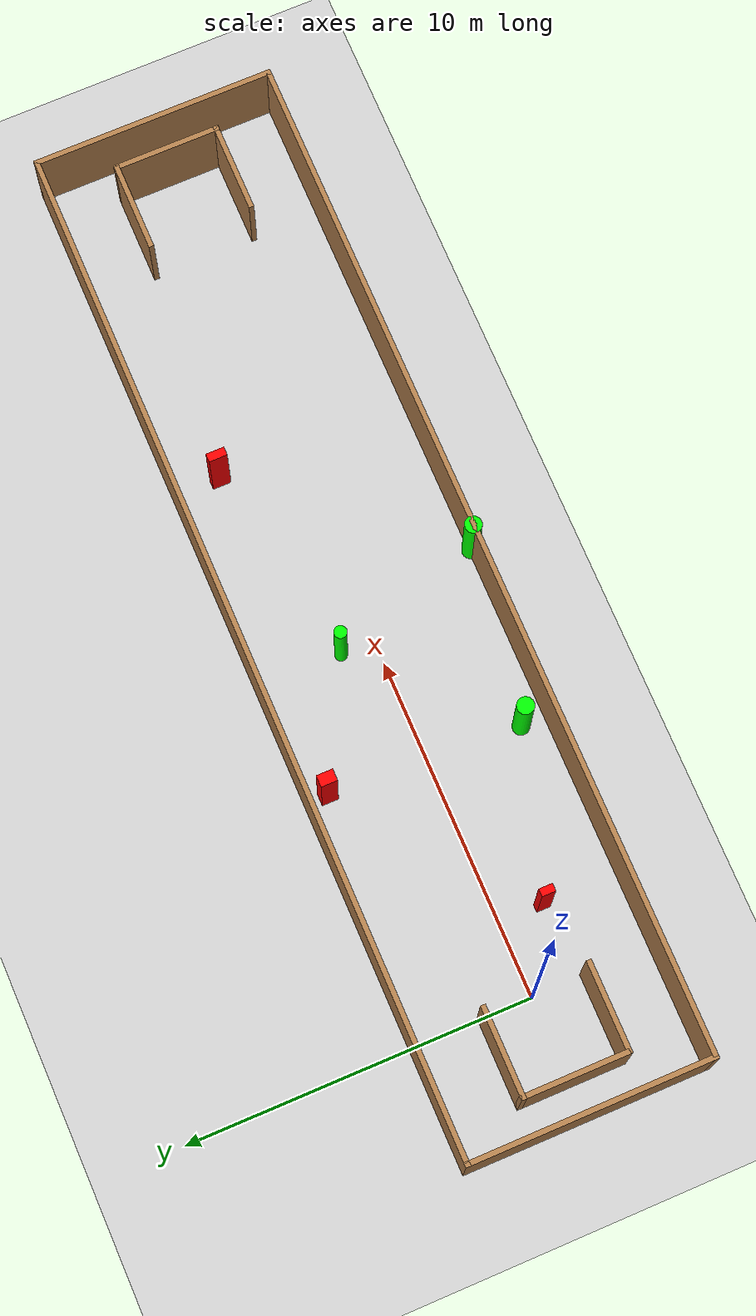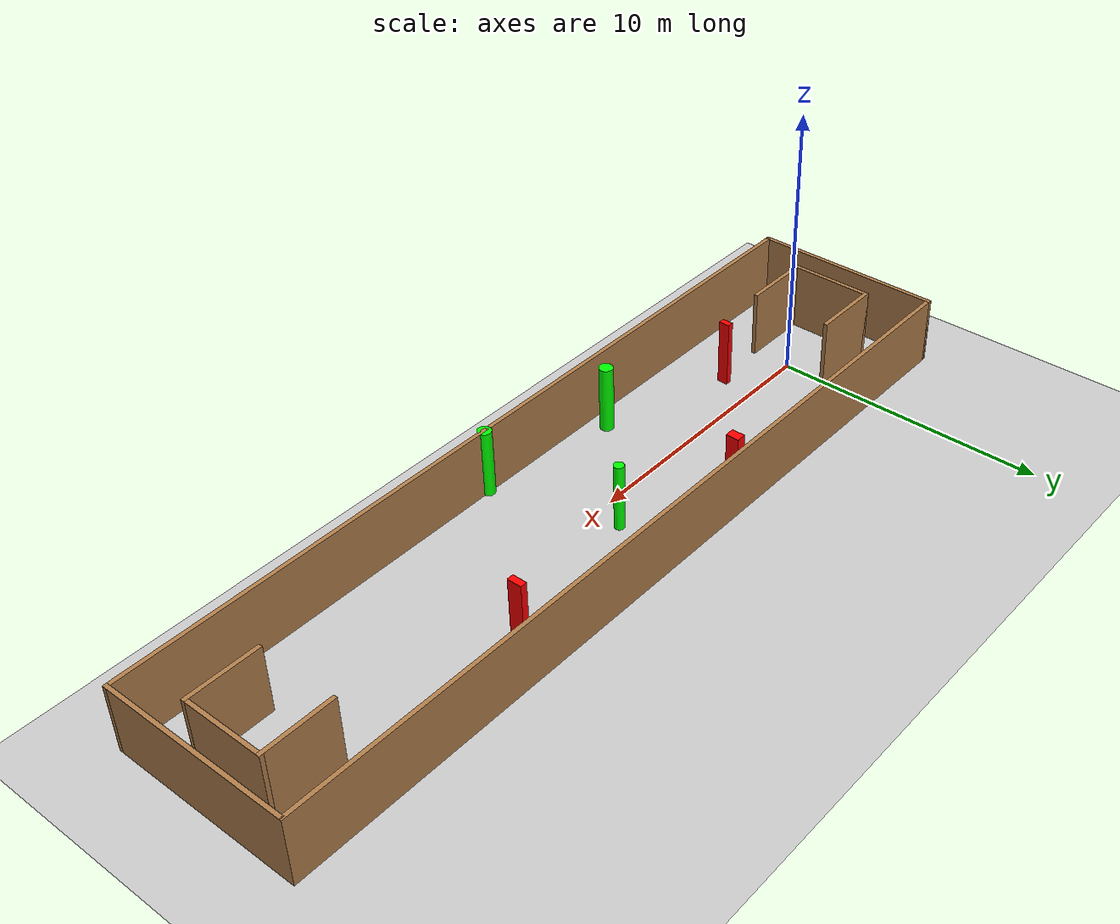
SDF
<sdf version="1.7">
 <world name="default">
  <light name="sun" type="directional">
   <pose>0 0 10 0 -0 0</pose>
   <diffuse>0.8 0.8 0.8 1</diffuse>
   <specular>0.2 0.2 0.2 1</specular>
   <attenuation>
    <range>1000</range>
    <constant>0.9</constant>
    <linear>0.01</linear>
    <quadratic>0.001</quadratic>
   </attenuation>
   <direction>-0.5 0.1 -0.9</direction>
   <spot><inner_angle>0</inner_angle><outer_angle>0</outer_angle><falloff>0</falloff></spot>
  </light>
  <model name="ground_plane">
   <static>1</static>
   <link name="link">
    <collision name="collision">
     <geometry><plane><normal>0 0 1</normal><size>100 100</size></plane></geometry>
     <surface>
      <contact><collide_bitmask>65535</collide_bitmask></contact>
      <friction><ode><mu>100</mu><mu2>50</mu2></ode></friction>
     </surface>
    </collision>
    <visual name="visual">
     <cast_shadows>0</cast_shadows>
     <geometry><plane><normal>0 0 1</normal><size>100 100</size></plane></geometry>
     <material>
      <script><uri>file://media/materials/scripts/gazebo.material</uri><name>Gazebo/Grey</name></script>
     </material>
    </visual>
   </link>
  </model>
  <gravity>0 0 -9.8</gravity>
  <magnetic_field>6e-06 2.3e-05 -4.2e-05</magnetic_field>
  <atmosphere type="adiabatic"/>
  <physics type="ode">
   <max_step_size>0.001</max_step_size>
   <real_time_factor>1</real_time_factor>
   <real_time_update_rate>1000</real_time_update_rate>
  </physics>
  <scene><ambient>0.4 0.4 0.4 1</ambient><background>0.7 0.7 0.7 1</background><shadows>1</shadows></scene>
  <spherical_coordinates>
   <surface_model>EARTH_WGS84</surface_model>
   <latitude_deg>0</latitude_deg>
   <longitude_deg>0</longitude_deg>
   <elevation>0</elevation>
   <heading_deg>0</heading_deg>
  </spherical_coordinates>
  <model name="my_base_walls">
   <link name="Wall_0">
    <collision name="Wall_0_Collision">
     <geometry><box><size>7.15 0.15 2.5</size></box></geometry>
     <pose>0 0 1.25 0 -0 0</pose>
    </collision>
    <visual name="Wall_0_Visual">
     <pose>0 0 1.25 0 -0 0</pose>
     <geometry><box><size>7.15 0.15 2.5</size></box></geometry>
     <material>
      <script><uri>file://media/materials/scripts/gazebo.material</uri><name>Gazebo/Wood</name></script>
      <ambient>1 1 1 1</ambient>
     </material>
     <meta><layer>0</layer></meta>
    </visual>
    <pose>-15 0 0 0 -0 1.5708</pose>
   </link>
   <link name="Wall_10">
    <collision name="Wall_10_Collision">
     <geometry><box><size>2.65 0.15 2.5</size></box></geometry>
     <pose>0 0 1.25 0 -0 0</pose>
    </collision>
    <visual name="Wall_10_Visual">
     <pose>0 0 1.25 0 -0 0</pose>
     <geometry><box><size>2.65 0.15 2.5</size></box></geometry>
     <material>
      <script><uri>file://media/materials/scripts/gazebo.material</uri><name>Gazebo/Wood</name></script>
      <ambient>1 1 1 1</ambient>
     </material>
     <meta><layer>0</layer></meta>
    </visual>
    <pose>-12.75 -1.5 0 0 -0 0</pose>
   </link>
   <link name="Wall_12">
    <collision name="Wall_12_Collision">
     <geometry><box><size>2.65 0.15 2.5</size></box></geometry>
     <pose>0 0 1.25 0 -0 0</pose>
    </collision>
    <visual name="Wall_12_Visual">
     <pose>0 0 1.25 0 -0 0</pose>
     <geometry><box><size>2.65 0.15 2.5</size></box></geometry>
     <material>
      <script><uri>file://media/materials/scripts/gazebo.material</uri><name>Gazebo/Wood</name></script>
      <ambient>1 1 1 1</ambient>
     </material>
     <meta><layer>0</layer></meta>
    </visual>
    <pose>-12.75 1.5 0 0 -0 0</pose>
   </link>
   <link name="Wall_14">
    <collision name="Wall_14_Collision">
     <geometry><box><size>3.15 0.15 2.5</size></box></geometry>
     <pose>0 0 1.25 0 -0 0</pose>
    </collision>
    <visual name="Wall_14_Visual">
     <pose>0 0 1.25 0 -0 0</pose>
     <geometry><box><size>3.15 0.15 2.5</size></box></geometry>
     <material>
      <script><uri>file://media/materials/scripts/gazebo.material</uri><name>Gazebo/Wood</name></script>
      <ambient>1 1 1 1</ambient>
     </material>
     <meta><layer>0</layer></meta>
    </visual>
    <pose>14 0 0 0 -0 -1.5708</pose>
   </link>
   <link name="Wall_15">
    <collision name="Wall_15_Collision">
     <geometry><box><size>2.65 0.15 2.5</size></box></geometry>
     <pose>0 0 1.25 0 -0 0</pose>
    </collision>
    <visual name="Wall_15_Visual">
     <pose>0 0 1.25 0 -0 0</pose>
     <geometry><box><size>2.65 0.15 2.5</size></box></geometry>
     <material>
      <script><uri>file://media/materials/scripts/gazebo.material</uri><name>Gazebo/Wood</name></script>
      <ambient>1 1 1 1</ambient>
     </material>
     <meta><layer>0</layer></meta>
    </visual>
    <pose>12.75 -1.5 0 0 -0 3.14159</pose>
   </link>
   <link name="Wall_17">
    <collision name="Wall_17_Collision">
     <geometry><box><size>2.65 0.15 2.5</size></box></geometry>
     <pose>0 0 1.25 0 -0 0</pose>
    </collision>
    <visual name="Wall_17_Visual">
     <pose>0 0 1.25 0 -0 0</pose>
     <geometry><box><size>2.65 0.15 2.5</size></box></geometry>
     <material>
      <script><uri>file://media/materials/scripts/gazebo.material</uri><name>Gazebo/Wood</name></script>
      <ambient>1 1 1 1</ambient>
     </material>
     <meta><layer>0</layer></meta>
    </visual>
    <pose>12.75 1.5 0 0 -0 3.14159</pose>
   </link>
   <link name="Wall_2">
    <collision name="Wall_2_Collision">
     <geometry><box><size>30.15 0.15 2.5</size></box></geometry>
     <pose>0 0 1.25 0 -0 0</pose>
    </collision>
    <visual name="Wall_2_Visual">
     <pose>0 0 1.25 0 -0 0</pose>
     <geometry><box><size>30.15 0.15 2.5</size></box></geometry>
     <material>
      <script><uri>file://media/materials/scripts/gazebo.material</uri><name>Gazebo/Wood</name></script>
      <ambient>1 1 1 1</ambient>
     </material>
     <meta><layer>0</layer></meta>
    </visual>
    <pose>-0 -3.5 0 0 -0 0</pose>
   </link>
   <link name="Wall_4">
    <collision name="Wall_4_Collision">
     <geometry><box><size>30.15 0.15 2.5</size></box></geometry>
     <pose>0 0 1.25 0 -0 0</pose>
    </collision>
    <visual name="Wall_4_Visual">
     <pose>0 0 1.25 0 -0 0</pose>
     <geometry><box><size>30.15 0.15 2.5</size></box></geometry>
     <material>
      <script><uri>file://media/materials/scripts/gazebo.material</uri><name>Gazebo/Wood</name></script>
      <ambient>1 1 1 1</ambient>
     </material>
     <meta><layer>0</layer></meta>
    </visual>
    <pose>-0 3.5 0 0 -0 0</pose>
   </link>
   <link name="Wall_6">
    <collision name="Wall_6_Collision">
     <geometry><box><size>7.15 0.15 2.5</size></box></geometry>
     <pose>0 0 1.25 0 -0 0</pose>
    </collision>
    <visual name="Wall_6_Visual">
     <pose>0 0 1.25 0 -0 0</pose>
     <geometry><box><size>7.15 0.15 2.5</size></box></geometry>
     <material>
      <script><uri>file://media/materials/scripts/gazebo.material</uri><name>Gazebo/Wood</name></script>
      <ambient>1 1 1 1</ambient>
     </material>
     <meta><layer>0</layer></meta>
    </visual>
    <pose>15 0 0 0 -0 -1.5708</pose>
   </link>
   <link name="Wall_9">
    <collision name="Wall_9_Collision">
     <geometry><box><size>3.15 0.15 2.5</size></box></geometry>
     <pose>0 0 1.25 0 -0 0</pose>
    </collision>
    <visual name="Wall_9_Visual">
     <pose>0 0 1.25 0 -0 0</pose>
     <geometry><box><size>3.15 0.15 2.5</size></box></geometry>
     <material>
      <script><uri>file://media/materials/scripts/gazebo.material</uri><name>Gazebo/Wood</name></script>
      <ambient>1 1 1 1</ambient>
     </material>
     <meta><layer>0</layer></meta>
    </visual>
    <pose>-14 0 0 0 -0 -1.5708</pose>
   </link>
   <static>1</static>
   <pose>11.5 0 0 0 -0 0</pose>
  </model>
  <model name="cylinder1">
   <static>1</static>
   <link name="link">
    <inertial>
     <mass>1</mass>
     <inertia><ixx>0.5</ixx><ixy>0</ixy><ixz>0</ixz><iyy>0.5</iyy><iyz>0</iyz><izz>1</izz></inertia>
    </inertial>
    <collision name="collision">
     <geometry><cylinder><radius>0.2464850180177403</radius><length>2.5</length></cylinder></geometry>
    </collision>
    <visual name="visual">
     <geometry><cylinder><radius>0.2464850180177403</radius><length>2.5</length></cylinder></geometry>
     <material>
      <ambient>0 1 0 1</ambient>
      <diffuse>0 1 0 1</diffuse>
      <specular>0.1 0.1 0.1 1</specular>
      <emissive>0 0 0 0</emissive>
     </material>
    </visual>
   </link>
   <pose>12.065099233052164 -3.4816253238163455 1.25 0 0 0</pose>
  </model>
  <model name="cylinder2">
   <static>1</static>
   <link name="link">
    <inertial>
     <mass>1</mass>
     <inertia><ixx>0.5</ixx><ixy>0</ixy><ixz>0</ixz><iyy>0.5</iyy><iyz>0</iyz><izz>1</izz></inertia>
    </inertial>
    <collision name="collision">
     <geometry><cylinder><radius>0.1825235712284704</radius><length>2.5</length></cylinder></geometry>
    </collision>
    <visual name="visual">
     <geometry><cylinder><radius>0.1825235712284704</radius><length>2.5</length></cylinder></geometry>
     <material>
      <ambient>0 1 0 1</ambient>
      <diffuse>0 1 0 1</diffuse>
      <specular>0.1 0.1 0.1 1</specular>
      <emissive>0 0 0 0</emissive>
     </material>
    </visual>
   </link>
   <pose>10.711109799152322 0.9916288721342017 1.25 0 0 0</pose>
  </model>
  <model name="cylinder3">
   <static>1</static>
   <link name="link">
    <inertial>
     <mass>1</mass>
     <inertia><ixx>0.5</ixx><ixy>0</ixy><ixz>0</ixz><iyy>0.5</iyy><iyz>0</iyz><izz>1</izz></inertia>
    </inertial>
    <collision name="collision">
     <geometry><cylinder><radius>0.25079490302267204</radius><length>2.5</length></cylinder></geometry>
    </collision>
    <visual name="visual">
     <geometry><cylinder><radius>0.25079490302267204</radius><length>2.5</length></cylinder></geometry>
     <material>
      <ambient>0 1 0 1</ambient>
      <diffuse>0 1 0 1</diffuse>
      <specular>0.1 0.1 0.1 1</specular>
      <emissive>0 0 0 0</emissive>
     </material>
    </visual>
   </link>
   <pose>6.919361905722846 -2.744300711493523 1.25 0 0 0</pose>
  </model>
  <model name="box1">
   <static>1</static>
   <link name="link">
    <inertial>
     <mass>1</mass>
     <inertia><ixx>0.083</ixx><ixy>0</ixy><ixz>0</ixz><iyy>0.083</iyy><iyz>0</iyz><izz>0.083</izz></inertia>
    </inertial>
    <collision name="collision">
     <geometry><box><size>0.2440623609568045 0.5337276199109596 2.5</size></box></geometry>
    </collision>
    <visual name="visual">
     <geometry><box><size>0.2440623609568045 0.5337276199109596 2.5</size></box></geometry>
     <material>
      <ambient>1 0 0 1</ambient>
      <diffuse>1 0 0 1</diffuse>
      <specular>0.1 0.1 0.1 1</specular>
      <emissive>0 0 0 0</emissive>
     </material>
    </visual>
    <sensor name="my_contact" type="contact">
     <contact><collision>box_collision</collision><topic>__default_topic__</topic></contact>
    </sensor>
   </link>
   <pose>16.62068360120427 2.1457941761225 1.25 0 0 0</pose>
  </model>
  <model name="box2">
   <static>1</static>
   <link name="link">
    <inertial>
     <mass>1</mass>
     <inertia><ixx>0.083</ixx><ixy>0</ixy><ixz>0</ixz><iyy>0.083</iyy><iyz>0</iyz><izz>0.083</izz></inertia>
    </inertial>
    <collision name="collision">
     <geometry><box><size>0.22468213146607058 0.40118719202376163 2.5</size></box></geometry>
    </collision>
    <visual name="visual">
     <geometry><box><size>0.22468213146607058 0.40118719202376163 2.5</size></box></geometry>
     <material>
      <ambient>1 0 0 1</ambient>
      <diffuse>1 0 0 1</diffuse>
      <specular>0.1 0.1 0.1 1</specular>
      <emissive>0 0 0 0</emissive>
     </material>
    </visual>
    <sensor name="my_contact" type="contact">
     <contact><collision>box_collision</collision><topic>__default_topic__</topic></contact>
    </sensor>
   </link>
   <pose>2.1690613170390467 -1.2587679378017795 1.25 0 0 0</pose>
  </model>
  <model name="box3">
   <static>1</static>
   <link name="link">
    <inertial>
     <mass>1</mass>
     <inertia><ixx>0.083</ixx><ixy>0</ixy><ixz>0</ixz><iyy>0.083</iyy><iyz>0</iyz><izz>0.083</izz></inertia>
    </inertial>
    <collision name="collision">
     <geometry><box><size>0.3401629493233897 0.4797496642780973 2.5</size></box></geometry>
    </collision>
    <visual name="visual">
     <geometry><box><size>0.3401629493233897 0.4797496642780973 2.5</size></box></geometry>
     <material>
      <ambient>1 0 0 1</ambient>
      <diffuse>1 0 0 1</diffuse>
      <specular>0.1 0.1 0.1 1</specular>
      <emissive>0 0 0 0</emissive>
     </material>
    </visual>
    <sensor name="my_contact" type="contact">
     <contact><collision>box_collision</collision><topic>__default_topic__</topic></contact>
    </sensor>
   </link>
   <pose>7.181018767493489 2.877723730258026 1.25 0 0 0</pose>
  </model>
 </world>
</sdf>
